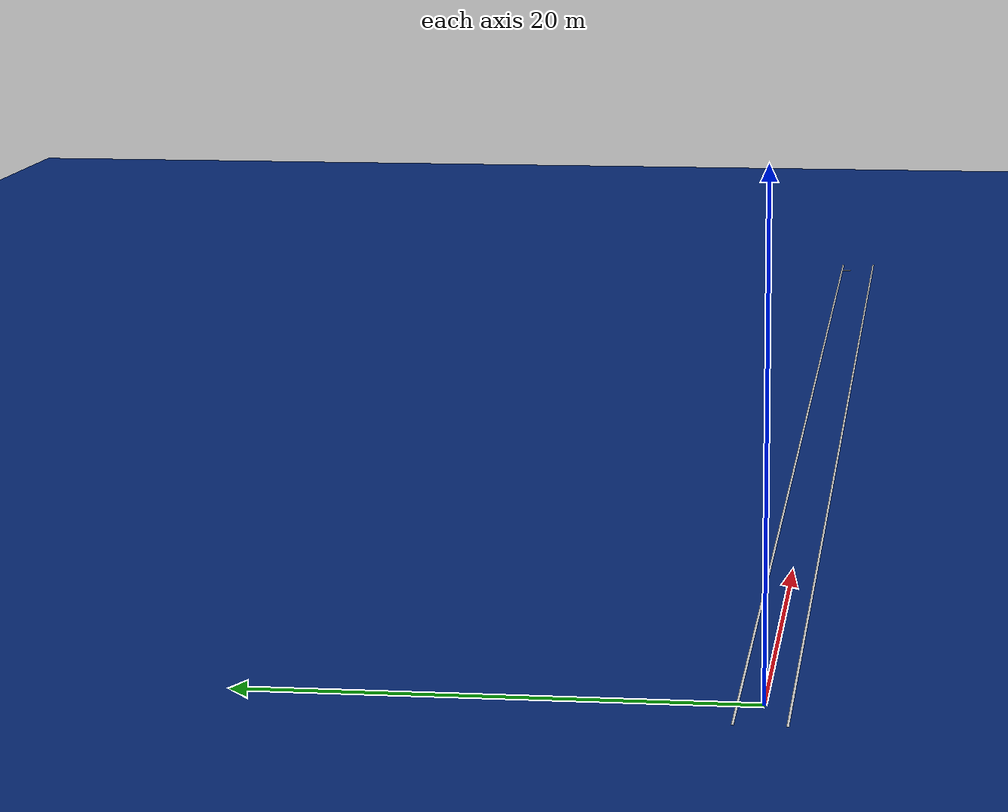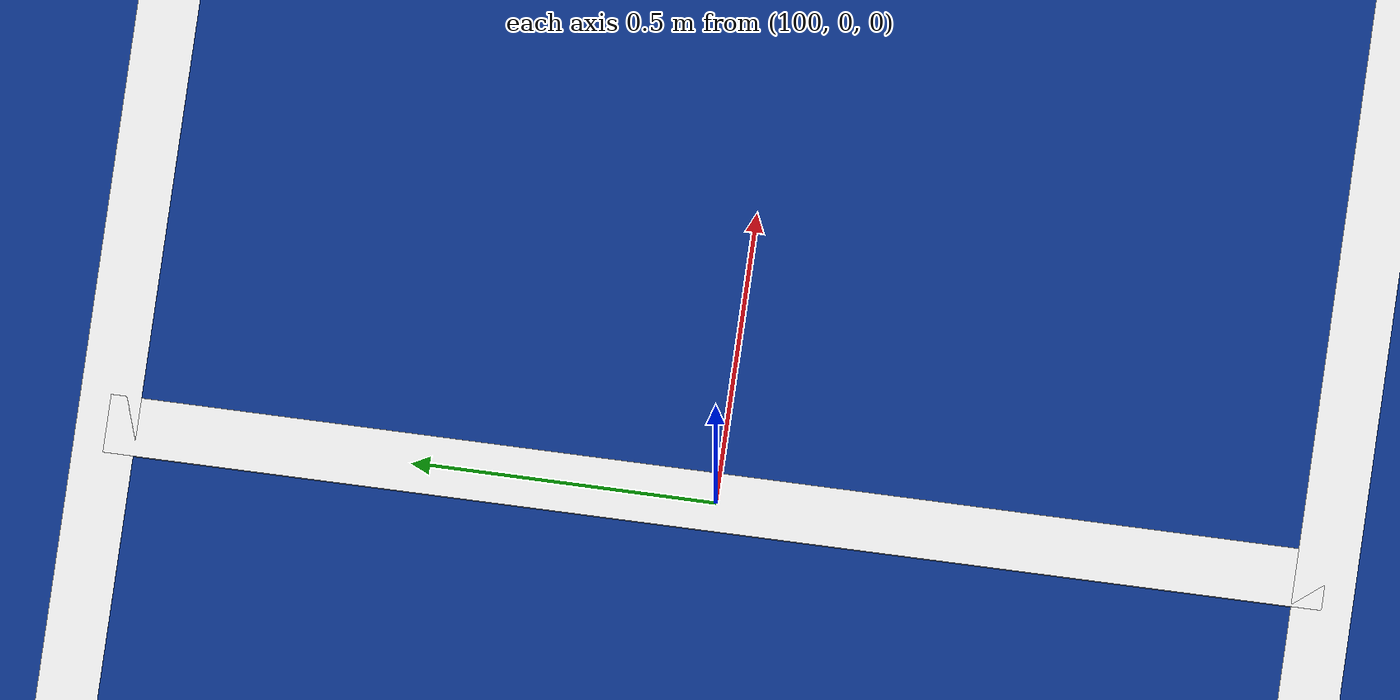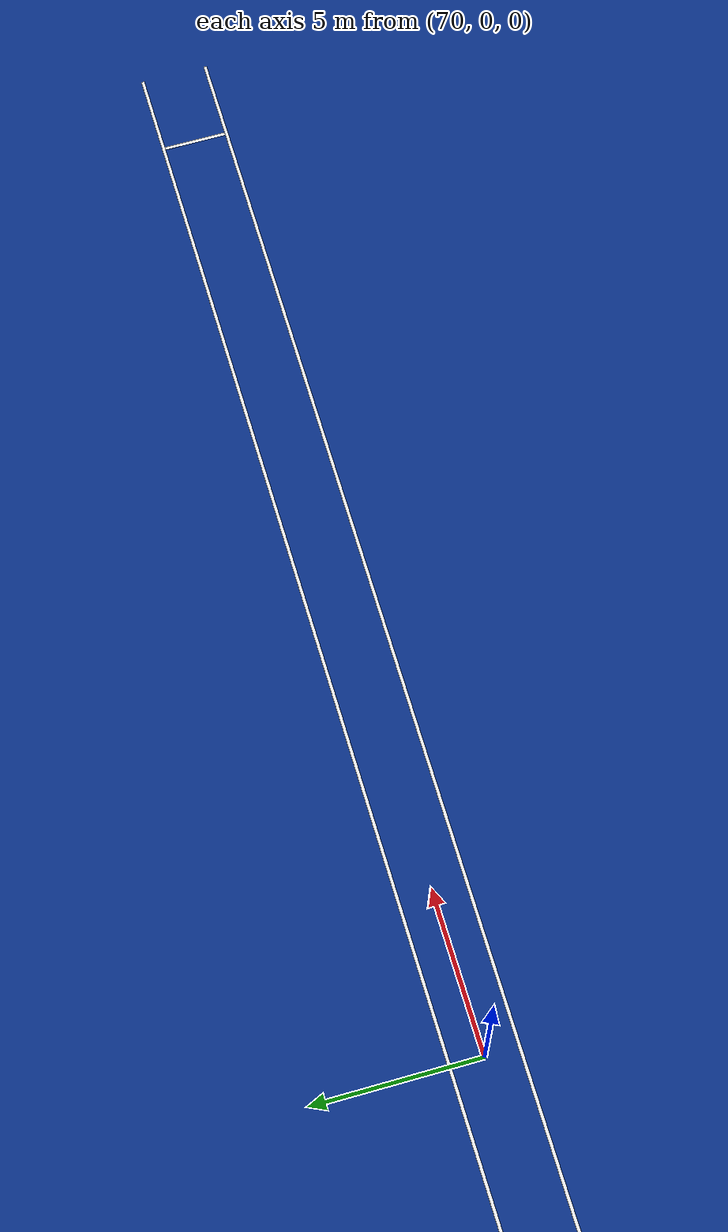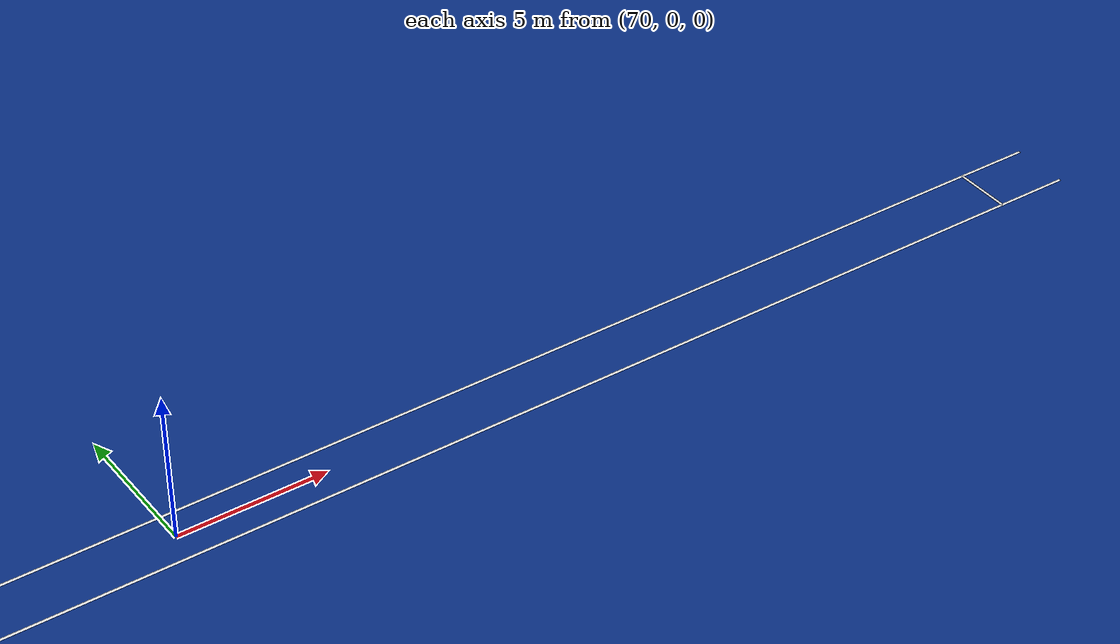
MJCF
<mujoco model="standalone 100m lane camera test">
  <compiler angle="radian"/>
  <option timestep="0.002" gravity="0 0 -9.81"/>

  <visual>
    <headlight diffuse="0.75 0.75 0.75" ambient="0.35 0.35 0.35" specular="0 0 0"/>
    <global offwidth="640" offheight="480"/>
  </visual>

  <asset>
    <material name="track" rgba="0.04 0.20 0.55 1" reflectance="0"/>
    <material name="white_line" rgba="0.96 0.96 0.96 1" reflectance="0"/>
  </asset>

  <worldbody>
    <light pos="30 0 12" dir="0 0 -1" directional="true"/>
    <geom name="track_floor" type="plane" size="0 0 0.05" material="track"/>
    <geom name="left_lane_line" type="box" pos="50 1.0 0.002"
          size="52.5 0.05 0.002" material="white_line" contype="0" conaffinity="0"/>
    <geom name="right_lane_line" type="box" pos="50 -1.0 0.002"
          size="52.5 0.05 0.002" material="white_line" contype="0" conaffinity="0"/>
    <geom name="finish_line" type="box" pos="100 0 0.002"
          size="0.05 1.0 0.002" material="white_line" contype="0" conaffinity="0"/>

    <body name="camera_rig" mocap="true" pos="0 0 1.18">
      <!-- Camera +X points to image right; camera looks along local -Z.
           These axes make it look robot-forward (+X) and 24 degrees down. -->
      <camera name="d435i_rgb" mode="fixed" pos="0 0 0"
              xyaxes="0 -1 0 0.406736 0 0.913545" fovy="58"/>
    </body>
  </worldbody>
</mujoco>
